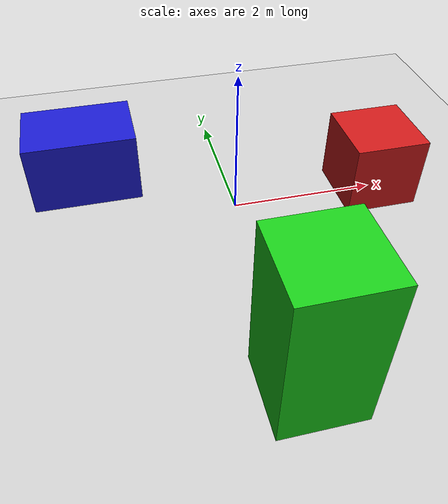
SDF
<?xml version="1.0" ?>
<sdf version="1.7">
  <world name="my_world">

    <!-- Physics settings -->
    <physics name="1ms" type="ignored">
      <max_step_size>0.001</max_step_size>
      <real_time_factor>1</real_time_factor>
      <real_time_update_rate>1000</real_time_update_rate>
    </physics>

    <!-- Global light -->
    <include>
      <uri>model://sun</uri>
    </include>

    <!-- Ground plane -->
    <include>
      <uri>model://ground_plane</uri>
    </include>

    <!-- Obstacle 1 -->
    <model name="box_obstacle1">
      <pose>2 0 0.5 0 0 0</pose>
      <link name="link">
        <collision name="collision">
          <geometry>
            <box>
              <size>1 1 1</size>
            </box>
          </geometry>
        </collision>
        <visual name="visual">
          <geometry>
            <box>
              <size>1 1 1</size>
            </box>
          </geometry>
          <material>
            <ambient>0.8 0.1 0.1 1</ambient>
            <diffuse>0.8 0.1 0.1 1</diffuse>
          </material>
        </visual>
      </link>
    </model>

    <!-- Obstacle 2 -->
    <model name="box_obstacle2">
      <pose>-2 1 0.5 0 0 0</pose>
      <link name="link">
        <collision name="collision">
          <geometry>
            <box>
              <size>1.5 1 1</size>
            </box>
          </geometry>
        </collision>
        <visual name="visual">
          <geometry>
            <box>
              <size>1.5 1 1</size>
            </box>
          </geometry>
          <material>
            <ambient>0.1 0.1 0.8 1</ambient>
            <diffuse>0.1 0.1 0.8 1</diffuse>
          </material>
        </visual>
      </link>
    </model>

    <!-- Obstacle 3 -->
    <model name="tall_box">
      <pose>0 -3 1.0 0 0 0</pose>
      <link name="link">
        <collision name="collision">
          <geometry>
            <box>
              <size>1 1 2</size>
            </box>
          </geometry>
        </collision>
        <visual name="visual">
          <geometry>
            <box>
              <size>1 1 2</size>
            </box>
          </geometry>
          <material>
            <ambient>0.1 0.8 0.1 1</ambient>
            <diffuse>0.1 0.8 0.1 1</diffuse>
          </material>
        </visual>
      </link>
    </model>

  </world>
</sdf>
